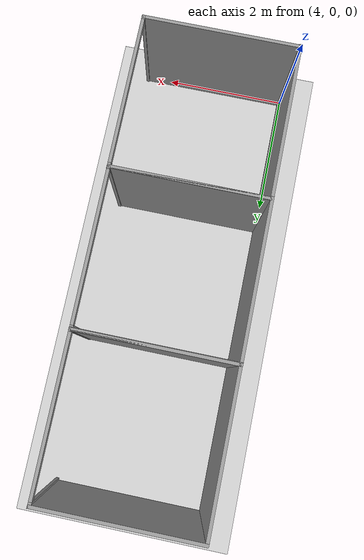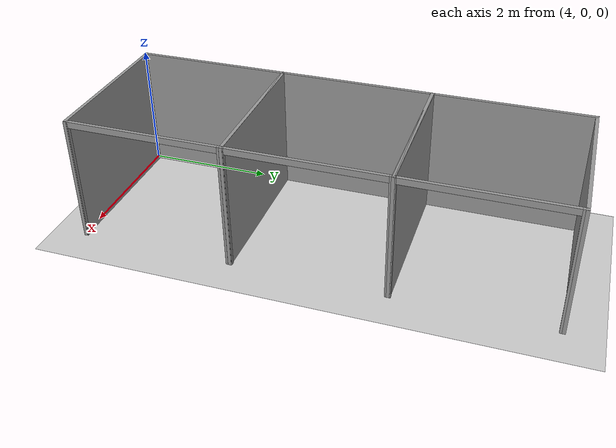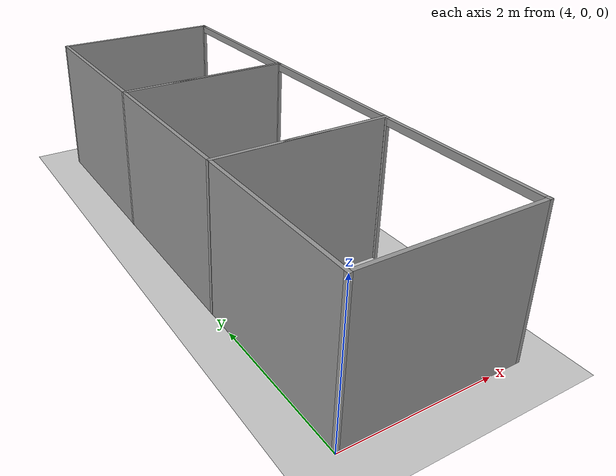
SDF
<sdf version="1.6">
 <world name="default">
  <model name="ground_plane">
   <static>1</static>
   <link name="link">
    <collision name="collision">
     <geometry><plane><normal>0 0 1</normal><size>100 100</size></plane></geometry>
     <surface>
      <contact><collide_bitmask>65535</collide_bitmask></contact>
      <friction><ode><mu>100</mu><mu2>50</mu2></ode></friction>
     </surface>
    </collision>
    <visual name="visual">
     <cast_shadows>0</cast_shadows>
     <geometry><plane><normal>0 0 1</normal><size>100 100</size></plane></geometry>
     <material>
      <script><uri>file://media/materials/scripts/gazebo.material</uri><name>Gazebo/Grey</name></script>
     </material>
    </visual>
   </link>
  </model>
  <model name="makeshift_hospital_room2_empty">
   <link name="Wall_10">
    <pose>-3.02485 2.61728 0 0 -0 1.5708</pose>
    <visual name="Wall_10_Visual">
     <pose>0 0 1 0 -0 0</pose>
     <geometry><box><size>2.45 0.05 2</size></box></geometry>
     <material>
      <script><uri>file://media/materials/scripts/gazebo.material</uri><name>Gazebo/Grey</name></script>
      <ambient>1 1 1 1</ambient>
     </material>
     <meta><layer>0</layer></meta>
    </visual>
    <collision name="Wall_10_Collision">
     <pose>0 0 1 0 -0 0</pose>
     <geometry><box><size>2.45 0.05 2</size></box></geometry>
     <surface>
      <friction>
       <ode><mu>1</mu><mu2>1</mu2><fdir1>0 0 0</fdir1><slip1>0</slip1><slip2>0</slip2></ode>
       <torsional>
        <coefficient>1</coefficient>
        <patch_radius>0</patch_radius>
        <surface_radius>0</surface_radius>
        <use_patch_radius>1</use_patch_radius>
        <ode><slip>0</slip></ode>
       </torsional>
      </friction>
      <bounce><restitution_coefficient>0</restitution_coefficient><threshold>1e+06</threshold></bounce>
      <contact>
       <collide_without_contact>0</collide_without_contact>
       <collide_without_contact_bitmask>1</collide_without_contact_bitmask>
       <collide_bitmask>1</collide_bitmask>
       <ode>
        <soft_cfm>0</soft_cfm>
        <soft_erp>0.2</soft_erp>
        <kp>1e+13</kp>
        <kd>1</kd>
        <max_vel>0.01</max_vel>
        <min_depth>0</min_depth>
       </ode>
       <bullet>
        <split_impulse>1</split_impulse>
        <split_impulse_penetration_threshold>-0.01</split_impulse_penetration_threshold>
        <soft_cfm>0</soft_cfm>
        <soft_erp>0.2</soft_erp>
        <kp>1e+13</kp>
        <kd>1</kd>
       </bullet>
      </contact>
     </surface>
    </collision>
   </link>
   <link name="Wall_11">
    <pose>-1.825 3.825 0 0 -0 3.14159</pose>
    <visual name="Wall_11_Visual">
     <pose>0 0 1 0 -0 0</pose>
     <geometry><box><size>2.45 0.05 2</size></box></geometry>
     <material>
      <script><uri>file://media/materials/scripts/gazebo.material</uri><name>Gazebo/Grey</name></script>
      <ambient>1 1 1 1</ambient>
     </material>
     <meta><layer>0</layer></meta>
    </visual>
    <collision name="Wall_11_Collision">
     <pose>0 0 1 0 -0 0</pose>
     <geometry><box><size>2.45 0.05 2</size></box></geometry>
     <surface>
      <friction>
       <ode><mu>1</mu><mu2>1</mu2><fdir1>0 0 0</fdir1><slip1>0</slip1><slip2>0</slip2></ode>
       <torsional>
        <coefficient>1</coefficient>
        <patch_radius>0</patch_radius>
        <surface_radius>0</surface_radius>
        <use_patch_radius>1</use_patch_radius>
        <ode><slip>0</slip></ode>
       </torsional>
      </friction>
      <bounce><restitution_coefficient>0</restitution_coefficient><threshold>1e+06</threshold></bounce>
      <contact>
       <collide_without_contact>0</collide_without_contact>
       <collide_without_contact_bitmask>1</collide_without_contact_bitmask>
       <collide_bitmask>1</collide_bitmask>
       <ode>
        <soft_cfm>0</soft_cfm>
        <soft_erp>0.2</soft_erp>
        <kp>1e+13</kp>
        <kd>1</kd>
        <max_vel>0.01</max_vel>
        <min_depth>0</min_depth>
       </ode>
       <bullet>
        <split_impulse>1</split_impulse>
        <split_impulse_penetration_threshold>-0.01</split_impulse_penetration_threshold>
        <soft_cfm>0</soft_cfm>
        <soft_erp>0.2</soft_erp>
        <kp>1e+13</kp>
        <kd>1</kd>
       </bullet>
      </contact>
     </surface>
    </collision>
   </link>
   <link name="Wall_13">
    <pose>-0.627028 2.62499 0 0 0 -1.5708</pose>
    <visual name="Wall_13_Visual_1">
     <pose>1.19221 0 1 0 -0 0</pose>
     <geometry><box><size>0.065587 0.05 2</size></box></geometry>
     <material>
      <script><uri>file://media/materials/scripts/gazebo.material</uri><name>Gazebo/Grey</name></script>
      <ambient>1 1 1 1</ambient>
     </material>
     <meta><layer>0</layer></meta>
    </visual>
    <visual name="Wall_13_Visual_2">
     <pose>0.009413 0 1.95 0 -0 0</pose>
     <geometry><box><size>2.3 0.05 0.1</size></box></geometry>
     <material>
      <script><uri>file://media/materials/scripts/gazebo.material</uri><name>Gazebo/Grey</name></script>
      <ambient>1 1 1 1</ambient>
     </material>
     <meta><layer>0</layer></meta>
    </visual>
    <visual name="Wall_13_Visual_0">
     <pose>-1.18279 0 1 0 -0 0</pose>
     <geometry><box><size>0.084413 0.05 2</size></box></geometry>
     <material>
      <script><uri>file://media/materials/scripts/gazebo.material</uri><name>Gazebo/Grey</name></script>
      <ambient>1 1 1 1</ambient>
     </material>
     <meta><layer>0</layer></meta>
    </visual>
    <collision name="Wall_13_Collision_2">
     <pose>0.009413 0 1.95 0 -0 0</pose>
     <geometry><box><size>2.3 0.05 0.1</size></box></geometry>
     <surface>
      <friction>
       <ode><mu>1</mu><mu2>1</mu2><fdir1>0 0 0</fdir1><slip1>0</slip1><slip2>0</slip2></ode>
       <torsional>
        <coefficient>1</coefficient>
        <patch_radius>0</patch_radius>
        <surface_radius>0</surface_radius>
        <use_patch_radius>1</use_patch_radius>
        <ode><slip>0</slip></ode>
       </torsional>
      </friction>
      <bounce><restitution_coefficient>0</restitution_coefficient><threshold>1e+06</threshold></bounce>
      <contact>
       <collide_without_contact>0</collide_without_contact>
       <collide_without_contact_bitmask>1</collide_without_contact_bitmask>
       <collide_bitmask>1</collide_bitmask>
       <ode>
        <soft_cfm>0</soft_cfm>
        <soft_erp>0.2</soft_erp>
        <kp>1e+13</kp>
        <kd>1</kd>
        <max_vel>0.01</max_vel>
        <min_depth>0</min_depth>
       </ode>
       <bullet>
        <split_impulse>1</split_impulse>
        <split_impulse_penetration_threshold>-0.01</split_impulse_penetration_threshold>
        <soft_cfm>0</soft_cfm>
        <soft_erp>0.2</soft_erp>
        <kp>1e+13</kp>
        <kd>1</kd>
       </bullet>
      </contact>
     </surface>
    </collision>
    <collision name="Wall_13_Collision_0">
     <pose>-1.18279 0 1 0 -0 0</pose>
     <geometry><box><size>0.084413 0.05 2</size></box></geometry>
     <surface>
      <friction>
       <ode><mu>1</mu><mu2>1</mu2><fdir1>0 0 0</fdir1><slip1>0</slip1><slip2>0</slip2></ode>
       <torsional>
        <coefficient>1</coefficient>
        <patch_radius>0</patch_radius>
        <surface_radius>0</surface_radius>
        <use_patch_radius>1</use_patch_radius>
        <ode><slip>0</slip></ode>
       </torsional>
      </friction>
      <bounce><restitution_coefficient>0</restitution_coefficient><threshold>1e+06</threshold></bounce>
      <contact>
       <collide_without_contact>0</collide_without_contact>
       <collide_without_contact_bitmask>1</collide_without_contact_bitmask>
       <collide_bitmask>1</collide_bitmask>
       <ode>
        <soft_cfm>0</soft_cfm>
        <soft_erp>0.2</soft_erp>
        <kp>1e+13</kp>
        <kd>1</kd>
        <max_vel>0.01</max_vel>
        <min_depth>0</min_depth>
       </ode>
       <bullet>
        <split_impulse>1</split_impulse>
        <split_impulse_penetration_threshold>-0.01</split_impulse_penetration_threshold>
        <soft_cfm>0</soft_cfm>
        <soft_erp>0.2</soft_erp>
        <kp>1e+13</kp>
        <kd>1</kd>
       </bullet>
      </contact>
     </surface>
    </collision>
    <collision name="Wall_13_Collision_1">
     <pose>1.19221 0 1 0 -0 0</pose>
     <geometry><box><size>0.065587 0.05 2</size></box></geometry>
     <surface>
      <friction>
       <ode><mu>1</mu><mu2>1</mu2><fdir1>0 0 0</fdir1><slip1>0</slip1><slip2>0</slip2></ode>
       <torsional>
        <coefficient>1</coefficient>
        <patch_radius>0</patch_radius>
        <surface_radius>0</surface_radius>
        <use_patch_radius>1</use_patch_radius>
        <ode><slip>0</slip></ode>
       </torsional>
      </friction>
      <bounce><restitution_coefficient>0</restitution_coefficient><threshold>1e+06</threshold></bounce>
      <contact>
       <collide_without_contact>0</collide_without_contact>
       <collide_without_contact_bitmask>1</collide_without_contact_bitmask>
       <collide_bitmask>1</collide_bitmask>
       <ode>
        <soft_cfm>0</soft_cfm>
        <soft_erp>0.2</soft_erp>
        <kp>1e+13</kp>
        <kd>1</kd>
        <max_vel>0.01</max_vel>
        <min_depth>0</min_depth>
       </ode>
       <bullet>
        <split_impulse>1</split_impulse>
        <split_impulse_penetration_threshold>-0.01</split_impulse_penetration_threshold>
        <soft_cfm>0</soft_cfm>
        <soft_erp>0.2</soft_erp>
        <kp>1e+13</kp>
        <kd>1</kd>
       </bullet>
      </contact>
     </surface>
    </collision>
   </link>
   <link name="Wall_9">
    <pose>-1.825 1.425 0 0 -0 0</pose>
    <visual name="Wall_9_Visual">
     <pose>0 0 1 0 -0 0</pose>
     <geometry><box><size>2.45 0.05 2</size></box></geometry>
     <material>
      <script><uri>file://media/materials/scripts/gazebo.material</uri><name>Gazebo/Grey</name></script>
      <ambient>1 1 1 1</ambient>
     </material>
     <meta><layer>0</layer></meta>
    </visual>
    <collision name="Wall_9_Collision">
     <pose>0 0 1 0 -0 0</pose>
     <geometry><box><size>2.45 0.05 2</size></box></geometry>
     <surface>
      <friction>
       <ode><mu>1</mu><mu2>1</mu2><fdir1>0 0 0</fdir1><slip1>0</slip1><slip2>0</slip2></ode>
       <torsional>
        <coefficient>1</coefficient>
        <patch_radius>0</patch_radius>
        <surface_radius>0</surface_radius>
        <use_patch_radius>1</use_patch_radius>
        <ode><slip>0</slip></ode>
       </torsional>
      </friction>
      <bounce><restitution_coefficient>0</restitution_coefficient><threshold>1e+06</threshold></bounce>
      <contact>
       <collide_without_contact>0</collide_without_contact>
       <collide_without_contact_bitmask>1</collide_without_contact_bitmask>
       <collide_bitmask>1</collide_bitmask>
       <ode>
        <soft_cfm>0</soft_cfm>
        <soft_erp>0.2</soft_erp>
        <kp>1e+13</kp>
        <kd>1</kd>
        <max_vel>0.01</max_vel>
        <min_depth>0</min_depth>
       </ode>
       <bullet>
        <split_impulse>1</split_impulse>
        <split_impulse_penetration_threshold>-0.01</split_impulse_penetration_threshold>
        <soft_cfm>0</soft_cfm>
        <soft_erp>0.2</soft_erp>
        <kp>1e+13</kp>
        <kd>1</kd>
       </bullet>
      </contact>
     </surface>
    </collision>
   </link>
   <static>1</static>
   <pose>7.04153 -1.39785 0 0 -0 0</pose>
  </model>
  <model name="makeshift_hospital_room2_empty_clone">
   <link name="Wall_10">
    <pose>-3.02485 2.61728 0 0 -0 1.5708</pose>
    <visual name="Wall_10_Visual">
     <pose>0 0 1 0 -0 0</pose>
     <geometry><box><size>2.45 0.05 2</size></box></geometry>
     <material>
      <script><uri>file://media/materials/scripts/gazebo.material</uri><name>Gazebo/Grey</name></script>
      <ambient>1 1 1 1</ambient>
     </material>
     <meta><layer>0</layer></meta>
    </visual>
    <collision name="Wall_10_Collision">
     <pose>0 0 1 0 -0 0</pose>
     <geometry><box><size>2.45 0.05 2</size></box></geometry>
     <surface>
      <friction>
       <ode><mu>1</mu><mu2>1</mu2><fdir1>0 0 0</fdir1><slip1>0</slip1><slip2>0</slip2></ode>
       <torsional>
        <coefficient>1</coefficient>
        <patch_radius>0</patch_radius>
        <surface_radius>0</surface_radius>
        <use_patch_radius>1</use_patch_radius>
        <ode><slip>0</slip></ode>
       </torsional>
      </friction>
      <bounce><restitution_coefficient>0</restitution_coefficient><threshold>1e+06</threshold></bounce>
      <contact>
       <collide_without_contact>0</collide_without_contact>
       <collide_without_contact_bitmask>1</collide_without_contact_bitmask>
       <collide_bitmask>1</collide_bitmask>
       <ode>
        <soft_cfm>0</soft_cfm>
        <soft_erp>0.2</soft_erp>
        <kp>1e+13</kp>
        <kd>1</kd>
        <max_vel>0.01</max_vel>
        <min_depth>0</min_depth>
       </ode>
       <bullet>
        <split_impulse>1</split_impulse>
        <split_impulse_penetration_threshold>-0.01</split_impulse_penetration_threshold>
        <soft_cfm>0</soft_cfm>
        <soft_erp>0.2</soft_erp>
        <kp>1e+13</kp>
        <kd>1</kd>
       </bullet>
      </contact>
     </surface>
    </collision>
   </link>
   <link name="Wall_11">
    <pose>-1.825 3.825 0 0 -0 3.14159</pose>
    <visual name="Wall_11_Visual">
     <pose>0 0 1 0 -0 0</pose>
     <geometry><box><size>2.45 0.05 2</size></box></geometry>
     <material>
      <script><uri>file://media/materials/scripts/gazebo.material</uri><name>Gazebo/Grey</name></script>
      <ambient>1 1 1 1</ambient>
     </material>
     <meta><layer>0</layer></meta>
    </visual>
    <collision name="Wall_11_Collision">
     <pose>0 0 1 0 -0 0</pose>
     <geometry><box><size>2.45 0.05 2</size></box></geometry>
     <surface>
      <friction>
       <ode><mu>1</mu><mu2>1</mu2><fdir1>0 0 0</fdir1><slip1>0</slip1><slip2>0</slip2></ode>
       <torsional>
        <coefficient>1</coefficient>
        <patch_radius>0</patch_radius>
        <surface_radius>0</surface_radius>
        <use_patch_radius>1</use_patch_radius>
        <ode><slip>0</slip></ode>
       </torsional>
      </friction>
      <bounce><restitution_coefficient>0</restitution_coefficient><threshold>1e+06</threshold></bounce>
      <contact>
       <collide_without_contact>0</collide_without_contact>
       <collide_without_contact_bitmask>1</collide_without_contact_bitmask>
       <collide_bitmask>1</collide_bitmask>
       <ode>
        <soft_cfm>0</soft_cfm>
        <soft_erp>0.2</soft_erp>
        <kp>1e+13</kp>
        <kd>1</kd>
        <max_vel>0.01</max_vel>
        <min_depth>0</min_depth>
       </ode>
       <bullet>
        <split_impulse>1</split_impulse>
        <split_impulse_penetration_threshold>-0.01</split_impulse_penetration_threshold>
        <soft_cfm>0</soft_cfm>
        <soft_erp>0.2</soft_erp>
        <kp>1e+13</kp>
        <kd>1</kd>
       </bullet>
      </contact>
     </surface>
    </collision>
   </link>
   <link name="Wall_13">
    <pose>-0.627028 2.62499 0 0 0 -1.5708</pose>
    <visual name="Wall_13_Visual_1">
     <pose>1.19221 0 1 0 -0 0</pose>
     <geometry><box><size>0.065587 0.05 2</size></box></geometry>
     <material>
      <script><uri>file://media/materials/scripts/gazebo.material</uri><name>Gazebo/Grey</name></script>
      <ambient>1 1 1 1</ambient>
     </material>
     <meta><layer>0</layer></meta>
    </visual>
    <visual name="Wall_13_Visual_2">
     <pose>0.009413 0 1.95 0 -0 0</pose>
     <geometry><box><size>2.3 0.05 0.1</size></box></geometry>
     <material>
      <script><uri>file://media/materials/scripts/gazebo.material</uri><name>Gazebo/Grey</name></script>
      <ambient>1 1 1 1</ambient>
     </material>
     <meta><layer>0</layer></meta>
    </visual>
    <visual name="Wall_13_Visual_0">
     <pose>-1.18279 0 1 0 -0 0</pose>
     <geometry><box><size>0.084413 0.05 2</size></box></geometry>
     <material>
      <script><uri>file://media/materials/scripts/gazebo.material</uri><name>Gazebo/Grey</name></script>
      <ambient>1 1 1 1</ambient>
     </material>
     <meta><layer>0</layer></meta>
    </visual>
    <collision name="Wall_13_Collision_2">
     <pose>0.009413 0 1.95 0 -0 0</pose>
     <geometry><box><size>2.3 0.05 0.1</size></box></geometry>
     <surface>
      <friction>
       <ode><mu>1</mu><mu2>1</mu2><fdir1>0 0 0</fdir1><slip1>0</slip1><slip2>0</slip2></ode>
       <torsional>
        <coefficient>1</coefficient>
        <patch_radius>0</patch_radius>
        <surface_radius>0</surface_radius>
        <use_patch_radius>1</use_patch_radius>
        <ode><slip>0</slip></ode>
       </torsional>
      </friction>
      <bounce><restitution_coefficient>0</restitution_coefficient><threshold>1e+06</threshold></bounce>
      <contact>
       <collide_without_contact>0</collide_without_contact>
       <collide_without_contact_bitmask>1</collide_without_contact_bitmask>
       <collide_bitmask>1</collide_bitmask>
       <ode>
        <soft_cfm>0</soft_cfm>
        <soft_erp>0.2</soft_erp>
        <kp>1e+13</kp>
        <kd>1</kd>
        <max_vel>0.01</max_vel>
        <min_depth>0</min_depth>
       </ode>
       <bullet>
        <split_impulse>1</split_impulse>
        <split_impulse_penetration_threshold>-0.01</split_impulse_penetration_threshold>
        <soft_cfm>0</soft_cfm>
        <soft_erp>0.2</soft_erp>
        <kp>1e+13</kp>
        <kd>1</kd>
       </bullet>
      </contact>
     </surface>
    </collision>
    <collision name="Wall_13_Collision_0">
     <pose>-1.18279 0 1 0 -0 0</pose>
     <geometry><box><size>0.084413 0.05 2</size></box></geometry>
     <surface>
      <friction>
       <ode><mu>1</mu><mu2>1</mu2><fdir1>0 0 0</fdir1><slip1>0</slip1><slip2>0</slip2></ode>
       <torsional>
        <coefficient>1</coefficient>
        <patch_radius>0</patch_radius>
        <surface_radius>0</surface_radius>
        <use_patch_radius>1</use_patch_radius>
        <ode><slip>0</slip></ode>
       </torsional>
      </friction>
      <bounce><restitution_coefficient>0</restitution_coefficient><threshold>1e+06</threshold></bounce>
      <contact>
       <collide_without_contact>0</collide_without_contact>
       <collide_without_contact_bitmask>1</collide_without_contact_bitmask>
       <collide_bitmask>1</collide_bitmask>
       <ode>
        <soft_cfm>0</soft_cfm>
        <soft_erp>0.2</soft_erp>
        <kp>1e+13</kp>
        <kd>1</kd>
        <max_vel>0.01</max_vel>
        <min_depth>0</min_depth>
       </ode>
       <bullet>
        <split_impulse>1</split_impulse>
        <split_impulse_penetration_threshold>-0.01</split_impulse_penetration_threshold>
        <soft_cfm>0</soft_cfm>
        <soft_erp>0.2</soft_erp>
        <kp>1e+13</kp>
        <kd>1</kd>
       </bullet>
      </contact>
     </surface>
    </collision>
    <collision name="Wall_13_Collision_1">
     <pose>1.19221 0 1 0 -0 0</pose>
     <geometry><box><size>0.065587 0.05 2</size></box></geometry>
     <surface>
      <friction>
       <ode><mu>1</mu><mu2>1</mu2><fdir1>0 0 0</fdir1><slip1>0</slip1><slip2>0</slip2></ode>
       <torsional>
        <coefficient>1</coefficient>
        <patch_radius>0</patch_radius>
        <surface_radius>0</surface_radius>
        <use_patch_radius>1</use_patch_radius>
        <ode><slip>0</slip></ode>
       </torsional>
      </friction>
      <bounce><restitution_coefficient>0</restitution_coefficient><threshold>1e+06</threshold></bounce>
      <contact>
       <collide_without_contact>0</collide_without_contact>
       <collide_without_contact_bitmask>1</collide_without_contact_bitmask>
       <collide_bitmask>1</collide_bitmask>
       <ode>
        <soft_cfm>0</soft_cfm>
        <soft_erp>0.2</soft_erp>
        <kp>1e+13</kp>
        <kd>1</kd>
        <max_vel>0.01</max_vel>
        <min_depth>0</min_depth>
       </ode>
       <bullet>
        <split_impulse>1</split_impulse>
        <split_impulse_penetration_threshold>-0.01</split_impulse_penetration_threshold>
        <soft_cfm>0</soft_cfm>
        <soft_erp>0.2</soft_erp>
        <kp>1e+13</kp>
        <kd>1</kd>
       </bullet>
      </contact>
     </surface>
    </collision>
   </link>
   <link name="Wall_9">
    <pose>-1.825 1.425 0 0 -0 0</pose>
    <visual name="Wall_9_Visual">
     <pose>0 0 1 0 -0 0</pose>
     <geometry><box><size>2.45 0.05 2</size></box></geometry>
     <material>
      <script><uri>file://media/materials/scripts/gazebo.material</uri><name>Gazebo/Grey</name></script>
      <ambient>1 1 1 1</ambient>
     </material>
     <meta><layer>0</layer></meta>
    </visual>
    <collision name="Wall_9_Collision">
     <pose>0 0 1 0 -0 0</pose>
     <geometry><box><size>2.45 0.05 2</size></box></geometry>
     <surface>
      <friction>
       <ode><mu>1</mu><mu2>1</mu2><fdir1>0 0 0</fdir1><slip1>0</slip1><slip2>0</slip2></ode>
       <torsional>
        <coefficient>1</coefficient>
        <patch_radius>0</patch_radius>
        <surface_radius>0</surface_radius>
        <use_patch_radius>1</use_patch_radius>
        <ode><slip>0</slip></ode>
       </torsional>
      </friction>
      <bounce><restitution_coefficient>0</restitution_coefficient><threshold>1e+06</threshold></bounce>
      <contact>
       <collide_without_contact>0</collide_without_contact>
       <collide_without_contact_bitmask>1</collide_without_contact_bitmask>
       <collide_bitmask>1</collide_bitmask>
       <ode>
        <soft_cfm>0</soft_cfm>
        <soft_erp>0.2</soft_erp>
        <kp>1e+13</kp>
        <kd>1</kd>
        <max_vel>0.01</max_vel>
        <min_depth>0</min_depth>
       </ode>
       <bullet>
        <split_impulse>1</split_impulse>
        <split_impulse_penetration_threshold>-0.01</split_impulse_penetration_threshold>
        <soft_cfm>0</soft_cfm>
        <soft_erp>0.2</soft_erp>
        <kp>1e+13</kp>
        <kd>1</kd>
       </bullet>
      </contact>
     </surface>
    </collision>
   </link>
   <static>1</static>
   <pose>7.03963 1.00031 0 0 -0 0</pose>
  </model>
  <model name="makeshift_hospital_room2_empty_clone_0">
   <link name="Wall_10">
    <pose>-3.02485 2.61728 0 0 -0 1.5708</pose>
    <visual name="Wall_10_Visual">
     <pose>0 0 1 0 -0 0</pose>
     <geometry><box><size>2.45 0.05 2</size></box></geometry>
     <material>
      <script><uri>file://media/materials/scripts/gazebo.material</uri><name>Gazebo/Grey</name></script>
      <ambient>1 1 1 1</ambient>
     </material>
     <meta><layer>0</layer></meta>
    </visual>
    <collision name="Wall_10_Collision">
     <pose>0 0 1 0 -0 0</pose>
     <geometry><box><size>2.45 0.05 2</size></box></geometry>
     <surface>
      <friction>
       <ode><mu>1</mu><mu2>1</mu2><fdir1>0 0 0</fdir1><slip1>0</slip1><slip2>0</slip2></ode>
       <torsional>
        <coefficient>1</coefficient>
        <patch_radius>0</patch_radius>
        <surface_radius>0</surface_radius>
        <use_patch_radius>1</use_patch_radius>
        <ode><slip>0</slip></ode>
       </torsional>
      </friction>
      <bounce><restitution_coefficient>0</restitution_coefficient><threshold>1e+06</threshold></bounce>
      <contact>
       <collide_without_contact>0</collide_without_contact>
       <collide_without_contact_bitmask>1</collide_without_contact_bitmask>
       <collide_bitmask>1</collide_bitmask>
       <ode>
        <soft_cfm>0</soft_cfm>
        <soft_erp>0.2</soft_erp>
        <kp>1e+13</kp>
        <kd>1</kd>
        <max_vel>0.01</max_vel>
        <min_depth>0</min_depth>
       </ode>
       <bullet>
        <split_impulse>1</split_impulse>
        <split_impulse_penetration_threshold>-0.01</split_impulse_penetration_threshold>
        <soft_cfm>0</soft_cfm>
        <soft_erp>0.2</soft_erp>
        <kp>1e+13</kp>
        <kd>1</kd>
       </bullet>
      </contact>
     </surface>
    </collision>
   </link>
   <link name="Wall_11">
    <pose>-1.825 3.825 0 0 -0 3.14159</pose>
    <visual name="Wall_11_Visual">
     <pose>0 0 1 0 -0 0</pose>
     <geometry><box><size>2.45 0.05 2</size></box></geometry>
     <material>
      <script><uri>file://media/materials/scripts/gazebo.material</uri><name>Gazebo/Grey</name></script>
      <ambient>1 1 1 1</ambient>
     </material>
     <meta><layer>0</layer></meta>
    </visual>
    <collision name="Wall_11_Collision">
     <pose>0 0 1 0 -0 0</pose>
     <geometry><box><size>2.45 0.05 2</size></box></geometry>
     <surface>
      <friction>
       <ode><mu>1</mu><mu2>1</mu2><fdir1>0 0 0</fdir1><slip1>0</slip1><slip2>0</slip2></ode>
       <torsional>
        <coefficient>1</coefficient>
        <patch_radius>0</patch_radius>
        <surface_radius>0</surface_radius>
        <use_patch_radius>1</use_patch_radius>
        <ode><slip>0</slip></ode>
       </torsional>
      </friction>
      <bounce><restitution_coefficient>0</restitution_coefficient><threshold>1e+06</threshold></bounce>
      <contact>
       <collide_without_contact>0</collide_without_contact>
       <collide_without_contact_bitmask>1</collide_without_contact_bitmask>
       <collide_bitmask>1</collide_bitmask>
       <ode>
        <soft_cfm>0</soft_cfm>
        <soft_erp>0.2</soft_erp>
        <kp>1e+13</kp>
        <kd>1</kd>
        <max_vel>0.01</max_vel>
        <min_depth>0</min_depth>
       </ode>
       <bullet>
        <split_impulse>1</split_impulse>
        <split_impulse_penetration_threshold>-0.01</split_impulse_penetration_threshold>
        <soft_cfm>0</soft_cfm>
        <soft_erp>0.2</soft_erp>
        <kp>1e+13</kp>
        <kd>1</kd>
       </bullet>
      </contact>
     </surface>
    </collision>
   </link>
   <link name="Wall_13">
    <pose>-0.627028 2.62499 0 0 0 -1.5708</pose>
    <visual name="Wall_13_Visual_1">
     <pose>1.19221 0 1 0 -0 0</pose>
     <geometry><box><size>0.065587 0.05 2</size></box></geometry>
     <material>
      <script><uri>file://media/materials/scripts/gazebo.material</uri><name>Gazebo/Grey</name></script>
      <ambient>1 1 1 1</ambient>
     </material>
     <meta><layer>0</layer></meta>
    </visual>
    <visual name="Wall_13_Visual_2">
     <pose>0.009413 0 1.95 0 -0 0</pose>
     <geometry><box><size>2.3 0.05 0.1</size></box></geometry>
     <material>
      <script><uri>file://media/materials/scripts/gazebo.material</uri><name>Gazebo/Grey</name></script>
      <ambient>1 1 1 1</ambient>
     </material>
     <meta><layer>0</layer></meta>
    </visual>
    <visual name="Wall_13_Visual_0">
     <pose>-1.18279 0 1 0 -0 0</pose>
     <geometry><box><size>0.084413 0.05 2</size></box></geometry>
     <material>
      <script><uri>file://media/materials/scripts/gazebo.material</uri><name>Gazebo/Grey</name></script>
      <ambient>1 1 1 1</ambient>
     </material>
     <meta><layer>0</layer></meta>
    </visual>
    <collision name="Wall_13_Collision_2">
     <pose>0.009413 0 1.95 0 -0 0</pose>
     <geometry><box><size>2.3 0.05 0.1</size></box></geometry>
     <surface>
      <friction>
       <ode><mu>1</mu><mu2>1</mu2><fdir1>0 0 0</fdir1><slip1>0</slip1><slip2>0</slip2></ode>
       <torsional>
        <coefficient>1</coefficient>
        <patch_radius>0</patch_radius>
        <surface_radius>0</surface_radius>
        <use_patch_radius>1</use_patch_radius>
        <ode><slip>0</slip></ode>
       </torsional>
      </friction>
      <bounce><restitution_coefficient>0</restitution_coefficient><threshold>1e+06</threshold></bounce>
      <contact>
       <collide_without_contact>0</collide_without_contact>
       <collide_without_contact_bitmask>1</collide_without_contact_bitmask>
       <collide_bitmask>1</collide_bitmask>
       <ode>
        <soft_cfm>0</soft_cfm>
        <soft_erp>0.2</soft_erp>
        <kp>1e+13</kp>
        <kd>1</kd>
        <max_vel>0.01</max_vel>
        <min_depth>0</min_depth>
       </ode>
       <bullet>
        <split_impulse>1</split_impulse>
        <split_impulse_penetration_threshold>-0.01</split_impulse_penetration_threshold>
        <soft_cfm>0</soft_cfm>
        <soft_erp>0.2</soft_erp>
        <kp>1e+13</kp>
        <kd>1</kd>
       </bullet>
      </contact>
     </surface>
    </collision>
    <collision name="Wall_13_Collision_0">
     <pose>-1.18279 0 1 0 -0 0</pose>
     <geometry><box><size>0.084413 0.05 2</size></box></geometry>
     <surface>
      <friction>
       <ode><mu>1</mu><mu2>1</mu2><fdir1>0 0 0</fdir1><slip1>0</slip1><slip2>0</slip2></ode>
       <torsional>
        <coefficient>1</coefficient>
        <patch_radius>0</patch_radius>
        <surface_radius>0</surface_radius>
        <use_patch_radius>1</use_patch_radius>
        <ode><slip>0</slip></ode>
       </torsional>
      </friction>
      <bounce><restitution_coefficient>0</restitution_coefficient><threshold>1e+06</threshold></bounce>
      <contact>
       <collide_without_contact>0</collide_without_contact>
       <collide_without_contact_bitmask>1</collide_without_contact_bitmask>
       <collide_bitmask>1</collide_bitmask>
       <ode>
        <soft_cfm>0</soft_cfm>
        <soft_erp>0.2</soft_erp>
        <kp>1e+13</kp>
        <kd>1</kd>
        <max_vel>0.01</max_vel>
        <min_depth>0</min_depth>
       </ode>
       <bullet>
        <split_impulse>1</split_impulse>
        <split_impulse_penetration_threshold>-0.01</split_impulse_penetration_threshold>
        <soft_cfm>0</soft_cfm>
        <soft_erp>0.2</soft_erp>
        <kp>1e+13</kp>
        <kd>1</kd>
       </bullet>
      </contact>
     </surface>
    </collision>
    <collision name="Wall_13_Collision_1">
     <pose>1.19221 0 1 0 -0 0</pose>
     <geometry><box><size>0.065587 0.05 2</size></box></geometry>
     <surface>
      <friction>
       <ode><mu>1</mu><mu2>1</mu2><fdir1>0 0 0</fdir1><slip1>0</slip1><slip2>0</slip2></ode>
       <torsional>
        <coefficient>1</coefficient>
        <patch_radius>0</patch_radius>
        <surface_radius>0</surface_radius>
        <use_patch_radius>1</use_patch_radius>
        <ode><slip>0</slip></ode>
       </torsional>
      </friction>
      <bounce><restitution_coefficient>0</restitution_coefficient><threshold>1e+06</threshold></bounce>
      <contact>
       <collide_without_contact>0</collide_without_contact>
       <collide_without_contact_bitmask>1</collide_without_contact_bitmask>
       <collide_bitmask>1</collide_bitmask>
       <ode>
        <soft_cfm>0</soft_cfm>
        <soft_erp>0.2</soft_erp>
        <kp>1e+13</kp>
        <kd>1</kd>
        <max_vel>0.01</max_vel>
        <min_depth>0</min_depth>
       </ode>
       <bullet>
        <split_impulse>1</split_impulse>
        <split_impulse_penetration_threshold>-0.01</split_impulse_penetration_threshold>
        <soft_cfm>0</soft_cfm>
        <soft_erp>0.2</soft_erp>
        <kp>1e+13</kp>
        <kd>1</kd>
       </bullet>
      </contact>
     </surface>
    </collision>
   </link>
   <link name="Wall_9">
    <pose>-1.825 1.425 0 0 -0 0</pose>
    <visual name="Wall_9_Visual">
     <pose>0 0 1 0 -0 0</pose>
     <geometry><box><size>2.45 0.05 2</size></box></geometry>
     <material>
      <script><uri>file://media/materials/scripts/gazebo.material</uri><name>Gazebo/Grey</name></script>
      <ambient>1 1 1 1</ambient>
     </material>
     <meta><layer>0</layer></meta>
    </visual>
    <collision name="Wall_9_Collision">
     <pose>0 0 1 0 -0 0</pose>
     <geometry><box><size>2.45 0.05 2</size></box></geometry>
     <surface>
      <friction>
       <ode><mu>1</mu><mu2>1</mu2><fdir1>0 0 0</fdir1><slip1>0</slip1><slip2>0</slip2></ode>
       <torsional>
        <coefficient>1</coefficient>
        <patch_radius>0</patch_radius>
        <surface_radius>0</surface_radius>
        <use_patch_radius>1</use_patch_radius>
        <ode><slip>0</slip></ode>
       </torsional>
      </friction>
      <bounce><restitution_coefficient>0</restitution_coefficient><threshold>1e+06</threshold></bounce>
      <contact>
       <collide_without_contact>0</collide_without_contact>
       <collide_without_contact_bitmask>1</collide_without_contact_bitmask>
       <collide_bitmask>1</collide_bitmask>
       <ode>
        <soft_cfm>0</soft_cfm>
        <soft_erp>0.2</soft_erp>
        <kp>1e+13</kp>
        <kd>1</kd>
        <max_vel>0.01</max_vel>
        <min_depth>0</min_depth>
       </ode>
       <bullet>
        <split_impulse>1</split_impulse>
        <split_impulse_penetration_threshold>-0.01</split_impulse_penetration_threshold>
        <soft_cfm>0</soft_cfm>
        <soft_erp>0.2</soft_erp>
        <kp>1e+13</kp>
        <kd>1</kd>
       </bullet>
      </contact>
     </surface>
    </collision>
   </link>
   <static>1</static>
   <pose>7.04198 3.39167 0 0 -0 0</pose>
  </model>
 </world>
</sdf>
